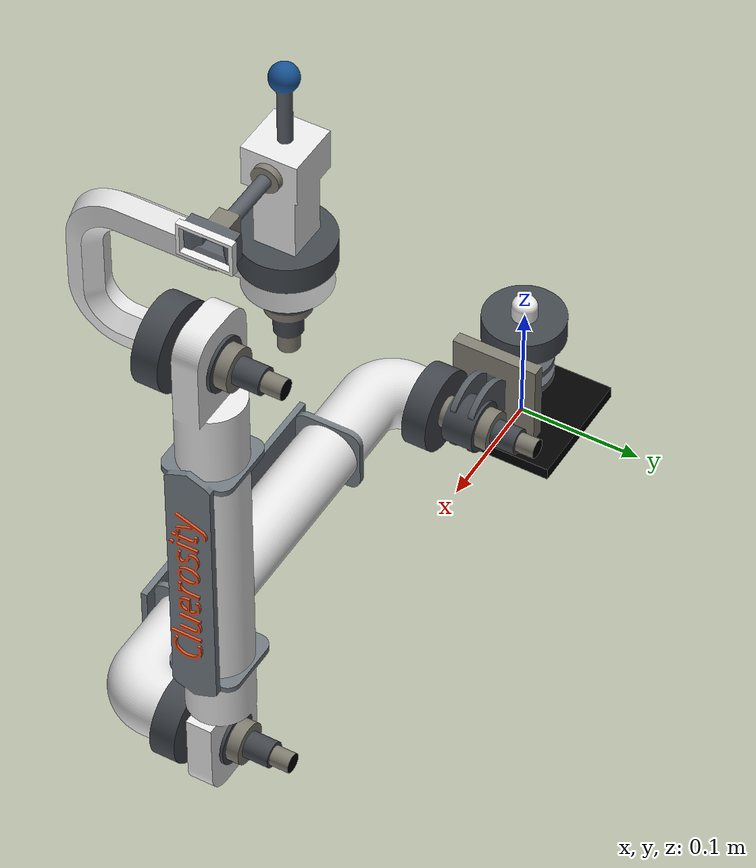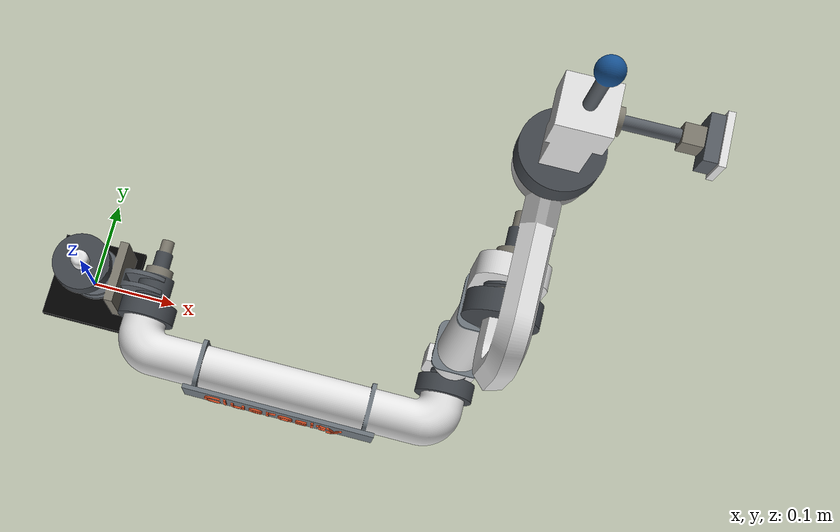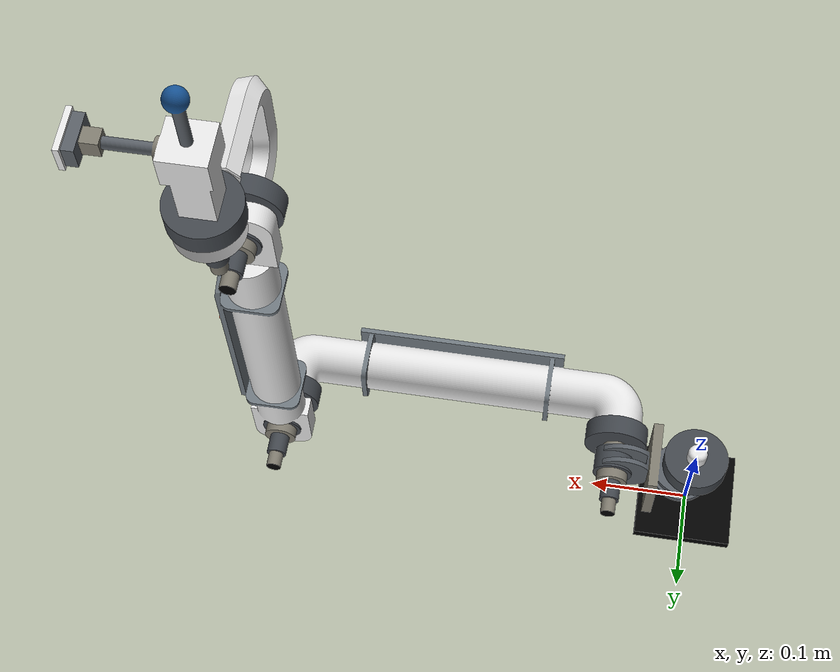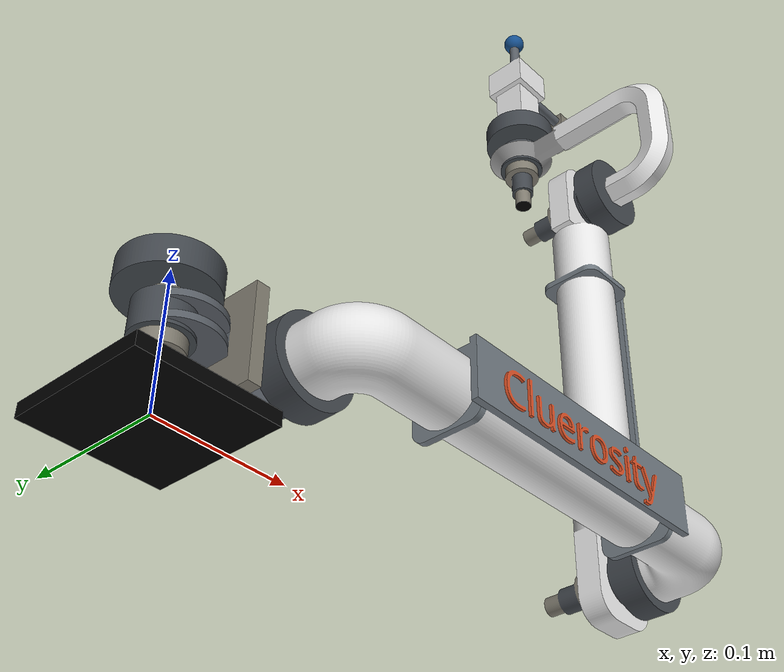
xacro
<?xml version="1.0"?>
<robot name="manipulator" xmlns:xacro="http://www.ros.org/wiki/xacro">

    <!-- Includes -->
    <xacro:include filename="$(find cluerosity_description)/urdf/meshes.xacro" />
    <xacro:include filename="$(find cluerosity_description)/urdf/materials.xacro" />
    <xacro:include filename="$(find cluerosity_description)/urdf/visual.xacro" />
    <xacro:include filename="$(find cluerosity_description)/urdf/physics.xacro" />
    <xacro:include filename="$(find test_package)/urdf/manipulator_links.xacro" />
    <xacro:include filename="$(find test_package)/urdf/manipulator.gazebo" />

    <!-- Properties -->
    <xacro:property name="PI" value="3.14159265359" />

    <!--
        +=====================+
        |      Base Link      |
        +=====================+
    -->

        <link name="base_link">
            <xacro:box_link
                xyz="0 0 0" rpy="0 0 0"
                box_size="0.1 0.1 0.01"
                material_name="black"
                />
            <xacro:box_collision
                xyz="0 0 0" rpy="0 0 0"
                box_size="0.1 0.1 0.01"/>
            <xacro:link_inertia
                xyz="0 0 0.075" rpy="0 0 0"
                mass="100.77662104"
                ixx="2.64" ixy="0.221" ixz="0.046"
                iyy="0.907" iyz="-0.237"  izz="3.303"/>
        </link>

        <!--
            +=======================+
            |       Manipulator      |
            +=======================+
        -->

        <xacro:motor_link
        name="motor_01"
        joint_xyz="0 0 0.1" joint_rpy="${PI} 0 0"
        parent="base_link"
        axis_xyz="0 0 1" axis_rpy="0 0 0"
        lower="-0.3" upper="1.20"/>

        <xacro:fixed_link
        name="motor_connector_01"
        link_xyz="0 0 0" link_rpy="0 0 0"
        mesh_name="${motor_connector_01}"
        joint_xyz="0.046 0 0.0395" joint_rpy="${PI/2} ${PI/2} 0"
        parent="motor_01"
        collision_xyz="0 0 0" collision_rpy="0 0 0" collision_size="0.05 0.05 0.05"
        mass="0.1226583"
        ixx="0.00006619" ixy="0" ixz="0"
        iyy="0.00007979" iyz="0" izz="0.00006619"/>

        <xacro:motor_link
        name="motor_02"
        joint_xyz="0 0.036 -0.0395" joint_rpy="0 0 0"
        parent="motor_connector_01"
        axis_xyz="0 0 1" axis_rpy="0 0 0"
        lower="${-PI/2}" upper="0"/>

        <xacro:fixed_link
        name="link_01"
        link_xyz="0 0 0" link_rpy="0 0 0"
        mesh_name="${link_01}"
        joint_xyz="0 0 0" joint_rpy="0 0 ${PI}"
        parent="motor_02"
        collision_xyz="0 -0.180 0" collision_rpy="0 0 0" collision_size="0.06 0.36 0.06"
        mass="1.28482853"
        ixx="0.01710143" ixy="0" ixz="0"
        iyy="0.00045593" iyz="0" izz="0.01705674"/>

        <xacro:motor_link
        name="motor_03"
        joint_xyz="0 -0.35 0" joint_rpy="0 0 0"
        parent="link_01"
        axis_xyz="0 0 1" axis_rpy="0 0 0"
        lower="0" upper="${PI/2}"/>

        <xacro:fixed_link
        name="link_02"
        link_xyz="0 0 0" link_rpy="0 0 0"
        mesh_name="${link_02}"
        joint_xyz="0 0 0.0395" joint_rpy="0 0 ${PI}"
        parent="motor_03"
        collision_xyz="0.180 0 0" collision_rpy="0 0 0" collision_size="0.36 0.06 0.06"
        mass="1.19702377"
        ixx="0.00043777" ixy="0.00000865" ixz="0"
        iyy="0.01364495" iyz="0" izz="0.01375154"/>

        <xacro:motor_link
        name="motor_04"
        joint_xyz="0.370 0 -0.0395" joint_rpy="0 0 0"
        parent="link_02"
        axis_xyz="0 0 1" axis_rpy="0 0 0"
        lower="${-PI/2}" upper="${PI/2}"/>

        <xacro:fixed_link
        name="motor_connector_02"
        link_xyz="0 0 0" link_rpy="0 0 0"
        mesh_name="${motor_connector_02}"
        joint_xyz="0 0 0" joint_rpy="0 0 0"
        parent="motor_04"
        collision_xyz="0 0 0" collision_rpy="0 0 0" collision_size="0.05 0.05 0.05"
        mass="0.32771971"
        ixx="0.00031006" ixy="0" ixz="0"
        iyy="0.00083377" iyz="0" izz="0.00055215"/>

        <xacro:continuous_link
        name="motor_05"
        link_xyz="0 0 0" link_rpy="0 0 0"
        mesh_name="${motor}"
        joint_xyz="0.1395 0 0.1" joint_rpy="0 ${-PI/2} 0"
        parent="motor_connector_02"
        collision_xyz="0 0 0" collision_rpy="0 0 0" collision_size="0.05 0.05 0.15"
        mass="0.61826506"
        ixx="0.00067265" ixy="0" ixz="0"
        iyy="0.0006728" iyz="0" izz="0.00080351"
        axis_xyz="0 0 1" axis_rpy="0 0 0"/>

        <xacro:fixed_link
        name="end_effector_connector"
        link_xyz="0 0 0" link_rpy="0 0 0"
        mesh_name="${end_effector_connector}"
        joint_xyz="0 0 0" joint_rpy="0 0 ${-PI/2}"
        parent="motor_05"
        collision_xyz="0 0 0" collision_rpy="0 0 0" collision_size="0.105 0.105 0.075"
        mass="0.30502898"
        ixx="0.00027224" ixy="0" ixz="0"
        iyy="0.00042032" iyz="0" izz="0.00020714"/>

        <transmission name="motor_01_trans">
            <type>transmission_interface/SimpleTransmission</type>
            <joint name="motor_01_joint">
            <hardwareInterface>hardware_interface/EffortJointInterface</hardwareInterface>
            </joint>
            <actuator name="motor1">
            <hardwareInterface>hardware_interface/EffortJointInterface</hardwareInterface>
            <mechanicalInterface>1</mechanicalInterface>
            </actuator>
        </transmission>

        <transmission name="motor_02_trans">
            <type>transmission_interface/SimpleTransmission</type>
            <joint name="motor_02_joint">
            <hardwareInterface>hardware_interface/EffortJointInterface</hardwareInterface>
            </joint>
            <actuator name="motor2">
            <hardwareInterface>hardware_interface/EffortJointInterface</hardwareInterface>
            <mechanicalInterface>1</mechanicalInterface>
            </actuator>
        </transmission>

        <transmission name="motor_03_trans">
            <type>transmission_interface/SimpleTransmission</type>
            <joint name="motor_03_joint">
            <hardwareInterface>hardware_interface/EffortJointInterface</hardwareInterface>
            </joint>
            <actuator name="motor3">
            <hardwareInterface>hardware_interface/EffortJointInterface</hardwareInterface>
            <mechanicalInterface>1</mechanicalInterface>
            </actuator>
        </transmission>

        <transmission name="motor_04_trans">
            <type>transmission_interface/SimpleTransmission</type>
            <joint name="motor_04_joint">
            <hardwareInterface>hardware_interface/EffortJointInterface</hardwareInterface>
            </joint>
            <actuator name="motor4">
            <hardwareInterface>hardware_interface/EffortJointInterface</hardwareInterface>
            <mechanicalInterface>1</mechanicalInterface>
            </actuator>
        </transmission>

        <transmission name="motor_05_trans">
            <type>transmission_interface/SimpleTransmission</type>
            <joint name="motor_05_joint">
            <hardwareInterface>hardware_interface/EffortJointInterface</hardwareInterface>
            </joint>
            <actuator name="motor5">
            <hardwareInterface>hardware_interface/EffortJointInterface</hardwareInterface>
            <mechanicalInterface>1</mechanicalInterface>
            </actuator>
        </transmission>

</robot>

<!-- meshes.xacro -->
<robot xmlns:xacro="http://www.ros.org/wiki/xacro">
    <xacro:property name="robot_base" value="package://cluerosity_description/meshes/robot_base.dae" />
    <xacro:property name="tyre" value="package://cluerosity_description/meshes/tyre.dae" />
    <xacro:property name="rim" value="package://cluerosity_description/meshes/rim.dae" />
    <xacro:property name="gimbal_axle" value="package://cluerosity_description/meshes/gimbal_axle.dae" />
    <xacro:property name="stepper_motor" value="package://cluerosity_description/meshes/stepper_motor.dae" />
    <xacro:property name="sensor_housing" value="package://cluerosity_description/meshes/sensor_housing.dae" />
    <xacro:property name="lidar_base" value="package://cluerosity_description/meshes/lidar_base.dae" />
    <xacro:property name="lidar_sensor" value="package://cluerosity_description/meshes/velodyne_lidar.dae" />
    <xacro:property name="motor" value="package://cluerosity_description/meshes/motor.dae" />
    <xacro:property name="motor_connector_01" value="package://cluerosity_description/meshes/motor_connector_01.dae" />
    <xacro:property name="motor_connector_02" value="package://cluerosity_description/meshes/motor_connector_02.dae" />
    <xacro:property name="link_01" value="package://cluerosity_description/meshes/link_01.dae" />
    <xacro:property name="link_02" value="package://cluerosity_description/meshes/link_02.dae" />
    <xacro:property name="end_effector_connector" value="package://cluerosity_description/meshes/end_effector_connector.dae" />

</robot>

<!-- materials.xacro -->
<robot name="m2wr" xmlns:xacro="https://www.ros.org/wiki/xacro">

    <material name="black">
        <color rgba="0.0 0.0 0.0 1.0" />
    </material>
    <material name="blue">
        <color rgba="0.203125 0.23828125 0.28515625 1.0" />
    </material>
    <material name="green">
        <color rgba="0.0 0.8 0.0 1.0" />
    </material>
    <material name="grey">
        <color rgba="0.2 0.2 0.2 1.0" />
    </material>
    <material name="orange">
        <color rgba="1.0 0.423529411765 0.0392156862745 1.0" />
    </material>
    <material name="brown">
        <color rgba="0.870588235294 0.811764705882 0.764705882353 1.0" />
    </material>
    <material name="red">
        <color rgba="0.80078125 0.12890625 0.1328125 1.0" />
    </material>
    <material name="white">
        <color rgba="1.0 1.0 1.0 1.0" />
    </material>
    <material name="dark_gray">
        <color rgba="0.35 0.38 0.4 1" />
    </material>
    <material name="cyan">
        <color rgba="0 1.0 1.0 1.0" />
    </material>

</robot>

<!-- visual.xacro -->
<robot xmlns:xacro="http://ros.org/wiki/xacro">

    <!-- For Links with Meshes -->
    <xacro:macro name="mesh_link" params="xyz rpy mesh_name">
        <visual>
            <origin xyz="${xyz}" rpy="${rpy}" />
            <geometry>
                <mesh filename="${mesh_name}" />
            </geometry>
        </visual>
    </xacro:macro>

    <!-- For Cylindrical Links  -->
    <xacro:macro name="cylinder_link" params="xyz rpy length radius material_name">
        <visual>
            <origin xyz="${xyz}" rpy="${rpy}" />
            <geometry>
                <cylinder length="${length}" radius="${radius}" />
            </geometry>
            <material name="${material_name}" />
        </visual>
    </xacro:macro>

    <!-- For box links -->
    <xacro:macro name="box_link" params="xyz rpy box_size material_name">
        <visual>
            <origin xyz="${xyz}" rpy="${rpy}" />
            <geometry>
                <box size="${box_size}" />
            </geometry>
            <material name="${material_name}" />
        </visual>
    </xacro:macro>

</robot>

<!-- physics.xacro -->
<robot xmlns:xacro="http://ros.org/wiki/xacro">

    <!-- Box Collsion -->
    <xacro:macro name="box_collision" params="xyz rpy box_size">
        <collision>
            <origin xyz="${xyz}" rpy="${rpy}" />
            <geometry>
                <box size="${box_size}" />
            </geometry>
        </collision>
    </xacro:macro>

    <!-- Cylindrical Collision  -->
    <xacro:macro name="cylinder_collision" params="xyz rpy length radius">
        <collision>
            <origin xyz="${xyz}" rpy="${rpy}" />
            <geometry>
                <cylinder length="${length}" radius="${radius}" />
            </geometry>
        </collision>
    </xacro:macro>

    <!-- Mass Properties: Inertial definition -->
    <xacro:macro name="link_inertia" params="xyz rpy mass ixx ixy ixz iyy iyz izz">
        <inertial>
            <mass value="${mass}" />
            <origin xyz="${xyz}" rpy="${rpy}" />
            <inertia ixx="${ixx}" ixy="${ixy}" ixz="${ixz}" iyy="${iyy}" iyz="${iyz}" izz="${izz}" />
        </inertial>
    </xacro:macro>

</robot>

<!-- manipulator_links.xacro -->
<robot xmlns:xacro="http://ros.org/wiki/xacro">

    <!--
        +===========================+
        |      Fixed Link Macro     |
        +==========================+
    -->

    <xacro:macro name="fixed_link" params="name link_xyz link_rpy joint_xyz joint_rpy mesh_name collision_xyz collision_rpy collision_size mass ixx ixy ixz iyy iyz izz parent">
        <link name="${name}">
            <xacro:mesh_link
                xyz="${link_xyz}" rpy="${link_rpy}"
                mesh_name="${mesh_name}"/>
            <xacro:box_collision
                xyz="${collision_xyz}" rpy="${collision_rpy}"
                box_size="${collision_size}"/>
            <xacro:link_inertia
                xyz="${collision_xyz}" rpy="${collision_rpy}"
                mass="${mass}"
                ixx="${ixx}" ixy="${ixy}" ixz="${ixz}"
                iyy="${iyy}" iyz="${iyz}" izz="${izz}"/>
        </link>

        <joint name="${name}_joint" type="fixed">
            <parent link="${parent}" />
            <child link="${name}" />
            <origin xyz="${joint_xyz}" rpy="${joint_rpy}" />
        </joint>
    </xacro:macro>

    <!--
        +===========================+
        |   Continuous Link Macro    |
        +==========================+
    -->

    <xacro:macro name="continuous_link" params="name link_xyz link_rpy joint_xyz joint_rpy mesh_name collision_xyz collision_rpy collision_size mass ixx ixy ixz iyy iyz izz parent axis_xyz axis_rpy">
        <link name="${name}">
            <xacro:mesh_link
                xyz="${link_xyz}" rpy="${link_rpy}"
                mesh_name="${mesh_name}"/>
            <xacro:box_collision
                xyz="${collision_xyz}" rpy="${collision_rpy}"
                box_size="${collision_size}"/>
            <xacro:link_inertia
                xyz="${collision_xyz}" rpy="${collision_rpy}"
                mass="${mass}"
                ixx="${ixx}" ixy="${ixy}" ixz="${ixz}"
                iyy="${iyy}" iyz="${iyz}" izz="${izz}"/>
        </link>

        <joint name="${name}_joint" type="continuous">
            <parent link="${parent}" />
            <child link="${name}" />
            <origin xyz="${joint_xyz}" rpy="${joint_rpy}" />
            <axis xyz="${axis_xyz}" rpy="${axis_rpy}" />
        </joint>
    </xacro:macro>

    <!--
        +===========================+
        |  Revolute Link Macro    |
        +==========================+
    -->

    <xacro:macro name="revolute_link" params="name link_xyz link_rpy joint_xyz joint_rpy mesh_name collision_xyz collision_rpy collision_size mass ixx ixy ixz iyy iyz izz parent axis_xyz axis_rpy lower upper">
        <link name="${name}">
            <xacro:mesh_link
                xyz="${link_xyz}" rpy="${link_rpy}"
                mesh_name="${mesh_name}"/>
            <xacro:box_collision
                xyz="${collision_xyz}" rpy="${collision_rpy}"
                box_size="${collision_size}"/>
            <xacro:link_inertia
                xyz="${collision_xyz}" rpy="${collision_rpy}"
                mass="${mass}"
                ixx="${ixx}" ixy="${ixy}" ixz="${ixz}"
                iyy="${iyy}" iyz="${iyz}" izz="${izz}"/>
        </link>

        <joint name="${name}_joint" type="revolute">
            <parent link="${parent}" />
            <child link="${name}" />
            <origin xyz="${joint_xyz}" rpy="${joint_rpy}" />
            <axis xyz="${axis_xyz}" rpy="${axis_rpy}" />
            <limit effort="1000.0" lower="${lower}" upper="${upper}" velocity="0.5" /> -->
        </joint>
    </xacro:macro>

    <!--
        +==============================================+
        |      Base Link and Base footprint Macro      |
        +==============================================+
    -->

    <xacro:macro name="base_link" params="mesh_name">
        <link name="base_link">
            <xacro:mesh_link
                xyz="0 0 0.15" rpy="0 ${PI} ${-PI/2}"
                mesh_name="${mesh_name}"/>
            <xacro:box_collision
                xyz="0 0 0.075" rpy="0 0 0"
                box_size="0.8 0.4 0.15"/>
            <xacro:box_collision
                xyz="-0.325 0.14 0.2" rpy="0 0 0"
                box_size="0.15 0.12 0.1"/>
            <xacro:box_collision
                xyz="0.45 0.1 0.05" rpy="0 0 0"
                box_size="0.1 0.1 0.05"/>
            <xacro:link_inertia
                xyz="0 0 0.075" rpy="0 0 0"
                mass="56.77662104"
                ixx="2.64" ixy="0.221" ixz="0.046"
                iyy="0.907" iyz="-0.237"  izz="3.303"/>
        </link>

        <!-- Base footprint is on the ground under the robot -->
        <link name="base_footprint" />

        <joint name="base_link_joint" type="fixed">
            <origin xyz="0 0 0.115" rpy="0 0 0" />
            <parent link="base_footprint" />
            <child link="base_link" />
        </joint>
    </xacro:macro>

    <xacro:macro name="motor_link" params="name joint_xyz joint_rpy parent axis_xyz axis_rpy lower upper">
        <link name="${name}">
            <xacro:mesh_link
                xyz="0 0 0" rpy="0 0 0"
                mesh_name="${motor}"/>
            <xacro:box_collision
                xyz="0 0 0" rpy="0 0 0"
                box_size="0.065 0.065 0.1"/>
            <xacro:link_inertia
                xyz="0 0 0" rpy="0 0 0"
                mass="0.33104028"
                ixx="0.00022976" ixy="0" ixz="0"
                iyy="0.00022976" iyz="0" izz="0.00011672"/>
        </link>

        <joint name="${name}_joint" type="revolute">
            <parent link="${parent}" />
            <child link="${name}" />
            <origin xyz="${joint_xyz}" rpy="${joint_rpy}" />
            <axis xyz="${axis_xyz}" rpy="${axis_rpy}" />
            <limit effort="10000.0" lower="${lower}" upper="${upper}" velocity="0.5" /> -->
        </joint>
    </xacro:macro>

</robot>
